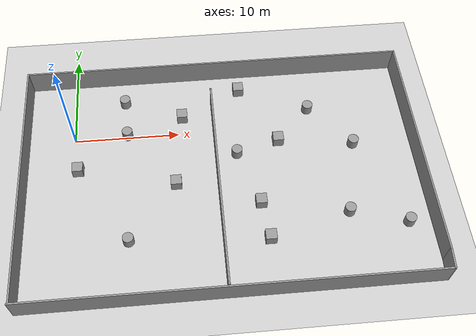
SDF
<sdf version="1.7">
 <world name="default">
  <light name="sun" type="directional">
   <pose>0 0 10 0 -0 0</pose>
   <diffuse>0.8 0.8 0.8 1</diffuse>
   <specular>0.2 0.2 0.2 1</specular>
   <attenuation>
    <range>1000</range>
    <constant>0.9</constant>
    <linear>0.01</linear>
    <quadratic>0.001</quadratic>
   </attenuation>
   <direction>-0.5 0.1 -0.9</direction>
   <spot><inner_angle>0</inner_angle><outer_angle>0</outer_angle><falloff>0</falloff></spot>
  </light>
  <model name="ground_plane">
   <static>1</static>
   <link name="link">
    <collision name="collision">
     <geometry><plane><normal>0 0 1</normal><size>100 100</size></plane></geometry>
     <surface><friction><ode><mu>100</mu><mu2>50</mu2></ode></friction></surface>
    </collision>
    <visual name="visual">
     <cast_shadows>0</cast_shadows>
     <geometry><plane><normal>0 0 1</normal><size>100 100</size></plane></geometry>
     <material>
      <script><uri>file://media/materials/scripts/gazebo.material</uri><name>Gazebo/Grey</name></script>
     </material>
    </visual>
   </link>
  </model>
  <gravity>0 0 -9.8</gravity>
  <magnetic_field>6e-06 2.3e-05 -4.2e-05</magnetic_field>
  <atmosphere type="adiabatic"/>
  <physics type="ode">
   <max_step_size>0.001</max_step_size>
   <real_time_factor>1</real_time_factor>
   <real_time_update_rate>1000</real_time_update_rate>
  </physics>
  <scene><ambient>0.4 0.4 0.4 1</ambient><background>0.7 0.7 0.7 1</background><shadows>1</shadows></scene>
  <audio><device>default</device></audio>
  <spherical_coordinates>
   <surface_model>EARTH_WGS84</surface_model>
   <latitude_deg>0</latitude_deg>
   <longitude_deg>0</longitude_deg>
   <elevation>0</elevation>
   <heading_deg>0</heading_deg>
  </spherical_coordinates>
  <model name="room">
   <pose>13.8972 -5.17235 0 0 -0 0</pose>
   <link name="Wall_13">
    <collision name="Wall_13_Collision">
     <geometry><box><size>24 0.15 2.5</size></box></geometry>
     <pose>0 0 1.25 0 -0 0</pose>
    </collision>
    <visual name="Wall_13_Visual">
     <pose>0 0 1.25 0 -0 0</pose>
     <geometry><box><size>24 0.15 2.5</size></box></geometry>
     <material>
      <script><uri>file://media/materials/scripts/gazebo.material</uri><name>Gazebo/Grey</name></script>
      <ambient>1 1 1 1</ambient>
     </material>
     <meta><layer>0</layer></meta>
    </visual>
    <pose>-18.383 0.040041 0 0 -0 -1.5708</pose>
   </link>
   <link name="Wall_15">
    <collision name="Wall_15_Collision">
     <geometry><box><size>37 0.15 2.5</size></box></geometry>
     <pose>0 0 1.25 0 -0 0</pose>
    </collision>
    <visual name="Wall_15_Visual">
     <pose>0 0 1.25 0 -0 0</pose>
     <geometry><box><size>37 0.15 2.5</size></box></geometry>
     <material>
      <script><uri>file://media/materials/scripts/gazebo.material</uri><name>Gazebo/Grey</name></script>
      <ambient>1 1 1 1</ambient>
     </material>
     <meta><layer>0</layer></meta>
    </visual>
    <pose>0.041985 11.965 0 0 -0 0</pose>
   </link>
   <link name="Wall_16">
    <collision name="Wall_16_Collision">
     <geometry><box><size>22.25 0.15 2.5</size></box></geometry>
     <pose>0 0 1.25 0 -0 0</pose>
    </collision>
    <visual name="Wall_16_Visual">
     <pose>0 0 1.25 0 -0 0</pose>
     <geometry><box><size>22.25 0.15 2.5</size></box></geometry>
     <material>
      <script><uri>file://media/materials/scripts/gazebo.material</uri><name>Gazebo/Grey</name></script>
      <ambient>1 1 1 1</ambient>
     </material>
     <meta><layer>0</layer></meta>
    </visual>
    <pose>18.467 0.915041 0 0 -0 -1.5708</pose>
   </link>
   <link name="Wall_19">
    <collision name="Wall_19_Collision">
     <geometry><box><size>36.9623 0.15 2.5</size></box></geometry>
     <pose>0 0 1.25 0 -0 0</pose>
    </collision>
    <visual name="Wall_19_Visual">
     <pose>0 0 1.25 0 -0 0</pose>
     <geometry><box><size>36.9623 0.15 2.5</size></box></geometry>
     <material>
      <script><uri>file://media/materials/scripts/gazebo.material</uri><name>Gazebo/Grey</name></script>
      <ambient>1 1 1 1</ambient>
     </material>
     <meta><layer>0</layer></meta>
    </visual>
    <pose>-0.06586 -11.96 0 0 -0 0</pose>
   </link>
   <link name="Wall_23">
    <collision name="Wall_23_Collision">
     <geometry><box><size>20.5 0.15 2.5</size></box></geometry>
     <pose>0 0 1.25 0 -0 0</pose>
    </collision>
    <visual name="Wall_23_Visual">
     <pose>0 0 1.25 0 -0 0</pose>
     <geometry><box><size>20.5 0.15 2.5</size></box></geometry>
     <material>
      <script><uri>file://media/materials/scripts/gazebo.material</uri><name>Gazebo/Grey</name></script>
      <ambient>1 1 1 1</ambient>
     </material>
     <meta><layer>0</layer></meta>
    </visual>
    <pose>-0.452882 -1.55084 0 0 -0 -1.5708</pose>
   </link>
   <link name="Wall_24">
    <collision name="Wall_24_Collision">
     <geometry><box><size>0.25 0.15 2.5</size></box></geometry>
     <pose>0 0 1.25 0 -0 0</pose>
    </collision>
    <visual name="Wall_24_Visual">
     <pose>0 0 1.25 0 -0 0</pose>
     <geometry><box><size>0.25 0.15 2.5</size></box></geometry>
     <material>
      <script><uri>file://media/materials/scripts/gazebo.material</uri><name>Gazebo/Grey</name></script>
      <ambient>1 1 1 1</ambient>
     </material>
     <meta><layer>0</layer></meta>
    </visual>
    <pose>-0.477881 -11.7691 0 0 -0 -2.0944</pose>
   </link>
   <link name="Wall_26">
    <collision name="Wall_26_Collision">
     <geometry><box><size>1.97946 0.15 2.5</size></box></geometry>
     <pose>0 0 1.25 0 -0 0</pose>
    </collision>
    <visual name="Wall_26_Visual">
     <pose>0 0 1.25 0 -0 0</pose>
     <geometry><box><size>1.97946 0.15 2.5</size></box></geometry>
     <material>
      <script><uri>file://media/materials/scripts/gazebo.material</uri><name>Gazebo/Grey</name></script>
      <ambient>1 1 1 1</ambient>
     </material>
     <meta><layer>0</layer></meta>
    </visual>
    <pose>18.4036 -11.0475 0 0 -0 1.50148</pose>
   </link>
   <static>1</static>
  </model>
  <model name="unit_cylinder">
   <pose>5.02485 -11.2674 0.499998 3e-06 -3e-06 0</pose>
   <link name="link">
    <inertial>
     <mass>1</mass>
     <inertia><ixx>0.145833</ixx><ixy>0</ixy><ixz>0</ixz><iyy>0.145833</iyy><iyz>0</iyz><izz>0.125</izz></inertia>
    </inertial>
    <collision name="collision">
     <geometry><cylinder><radius>0.5</radius><length>1</length></cylinder></geometry>
    </collision>
    <visual name="visual">
     <geometry><cylinder><radius>0.5</radius><length>1</length></cylinder></geometry>
     <material>
      <script><name>Gazebo/Grey</name><uri>file://media/materials/scripts/gazebo.material</uri></script>
     </material>
    </visual>
   </link>
  </model>
  <model name="unit_box">
   <pose>9.51903 -5.69304 0.499995 -1e-05 -0 -0</pose>
   <link name="link">
    <inertial>
     <mass>1</mass>
     <inertia>
      <ixx>0.166667</ixx>
      <ixy>0</ixy>
      <ixz>0</ixz>
      <iyy>0.166667</iyy>
      <iyz>0</iyz>
      <izz>0.166667</izz>
     </inertia>
    </inertial>
    <collision name="collision"><geometry><box><size>1 1 1</size></box></geometry></collision>
    <visual name="visual">
     <geometry><box><size>1 1 1</size></box></geometry>
     <material>
      <script><name>Gazebo/Grey</name><uri>file://media/materials/scripts/gazebo.material</uri></script>
     </material>
    </visual>
   </link>
  </model>
  <model name="unit_cylinder_0">
   <pose>5.0561 0.185693 0.499998 3e-06 -3e-06 0</pose>
   <link name="link">
    <inertial>
     <mass>1</mass>
     <inertia><ixx>0.145833</ixx><ixy>0</ixy><ixz>0</ixz><iyy>0.145833</iyy><iyz>0</iyz><izz>0.125</izz></inertia>
    </inertial>
    <collision name="collision">
     <geometry><cylinder><radius>0.5</radius><length>1</length></cylinder></geometry>
    </collision>
    <visual name="visual">
     <geometry><cylinder><radius>0.5</radius><length>1</length></cylinder></geometry>
     <material>
      <script><name>Gazebo/Grey</name><uri>file://media/materials/scripts/gazebo.material</uri></script>
     </material>
    </visual>
   </link>
  </model>
  <model name="unit_box_0">
   <pose>10.4559 1.87845 0.499995 -1e-05 -0 -0</pose>
   <link name="link">
    <inertial>
     <mass>1</mass>
     <inertia>
      <ixx>0.166667</ixx>
      <ixy>0</ixy>
      <ixz>0</ixz>
      <iyy>0.166667</iyy>
      <iyz>0</iyz>
      <izz>0.166667</izz>
     </inertia>
    </inertial>
    <collision name="collision"><geometry><box><size>1 1 1</size></box></geometry></collision>
    <visual name="visual">
     <geometry><box><size>1 1 1</size></box></geometry>
     <material>
      <script><name>Gazebo/Grey</name><uri>file://media/materials/scripts/gazebo.material</uri></script>
     </material>
    </visual>
   </link>
  </model>
  <model name="unit_cylinder_1">
   <pose>4.89968 4.08899 0.499992 -3e-06 3e-06 0</pose>
   <link name="link">
    <inertial>
     <mass>1</mass>
     <inertia><ixx>0.145833</ixx><ixy>0</ixy><ixz>0</ixz><iyy>0.145833</iyy><iyz>0</iyz><izz>0.125</izz></inertia>
    </inertial>
    <collision name="collision">
     <geometry><cylinder><radius>0.5</radius><length>1</length></cylinder></geometry>
    </collision>
    <visual name="visual">
     <geometry><cylinder><radius>0.5</radius><length>1</length></cylinder></geometry>
     <material>
      <script><name>Gazebo/Grey</name><uri>file://media/materials/scripts/gazebo.material</uri></script>
     </material>
    </visual>
   </link>
  </model>
  <model name="unit_box_1">
   <pose>0.37915 -3.5185 0.499995 -1e-05 -0 -0</pose>
   <link name="link">
    <inertial>
     <mass>1</mass>
     <inertia>
      <ixx>0.166667</ixx>
      <ixy>0</ixy>
      <ixz>0</ixz>
      <iyy>0.166667</iyy>
      <iyz>0</iyz>
      <izz>0.166667</izz>
     </inertia>
    </inertial>
    <collision name="collision"><geometry><box><size>1 1 1</size></box></geometry></collision>
    <visual name="visual">
     <geometry><box><size>1 1 1</size></box></geometry>
     <material>
      <script><name>Gazebo/Grey</name><uri>file://media/materials/scripts/gazebo.material</uri></script>
     </material>
    </visual>
   </link>
  </model>
  <model name="unit_box_2">
   <pose>16.259 4.76401 0.499995 0 1e-05 0</pose>
   <link name="link">
    <inertial>
     <mass>1</mass>
     <inertia>
      <ixx>0.166667</ixx>
      <ixy>0</ixy>
      <ixz>0</ixz>
      <iyy>0.166667</iyy>
      <iyz>0</iyz>
      <izz>0.166667</izz>
     </inertia>
    </inertial>
    <collision name="collision"><geometry><box><size>1 1 1</size></box></geometry></collision>
    <visual name="visual">
     <geometry><box><size>1 1 1</size></box></geometry>
     <material>
      <script><name>Gazebo/Grey</name><uri>file://media/materials/scripts/gazebo.material</uri></script>
     </material>
    </visual>
   </link>
  </model>
  <model name="unit_cylinder_2">
   <pose>15.4603 -2.79372 0.499992 -3e-06 4e-06 0</pose>
   <link name="link">
    <inertial>
     <mass>1</mass>
     <inertia><ixx>0.145833</ixx><ixy>0</ixy><ixz>0</ixz><iyy>0.145833</iyy><iyz>0</iyz><izz>0.125</izz></inertia>
    </inertial>
    <collision name="collision">
     <geometry><cylinder><radius>0.5</radius><length>1</length></cylinder></geometry>
    </collision>
    <visual name="visual">
     <geometry><cylinder><radius>0.5</radius><length>1</length></cylinder></geometry>
     <material>
      <script><name>Gazebo/Grey</name><uri>file://media/materials/scripts/gazebo.material</uri></script>
     </material>
    </visual>
   </link>
  </model>
  <model name="unit_cylinder_3">
   <pose>22.9117 1.89532 0.499998 3e-06 -4e-06 0</pose>
   <link name="link">
    <inertial>
     <mass>1</mass>
     <inertia><ixx>0.145833</ixx><ixy>0</ixy><ixz>0</ixz><iyy>0.145833</iyy><iyz>0</iyz><izz>0.125</izz></inertia>
    </inertial>
    <collision name="collision">
     <geometry><cylinder><radius>0.5</radius><length>1</length></cylinder></geometry>
    </collision>
    <visual name="visual">
     <geometry><cylinder><radius>0.5</radius><length>1</length></cylinder></geometry>
     <material>
      <script><name>Gazebo/Grey</name><uri>file://media/materials/scripts/gazebo.material</uri></script>
     </material>
    </visual>
   </link>
  </model>
  <model name="unit_box_3">
   <pose>19.5465 -1.61933 0.499995 -1e-05 -0 -0</pose>
   <link name="link">
    <inertial>
     <mass>1</mass>
     <inertia>
      <ixx>0.166667</ixx>
      <ixy>0</ixy>
      <ixz>0</ixz>
      <iyy>0.166667</iyy>
      <iyz>0</iyz>
      <izz>0.166667</izz>
     </inertia>
    </inertial>
    <collision name="collision"><geometry><box><size>1 1 1</size></box></geometry></collision>
    <visual name="visual">
     <geometry><box><size>1 1 1</size></box></geometry>
     <material>
      <script><name>Gazebo/Grey</name><uri>file://media/materials/scripts/gazebo.material</uri></script>
     </material>
    </visual>
   </link>
  </model>
  <model name="unit_cylinder_4">
   <pose>26.6996 -2.56396 0.499998 3e-06 4e-06 -0</pose>
   <link name="link">
    <inertial>
     <mass>1</mass>
     <inertia><ixx>0.145833</ixx><ixy>0</ixy><ixz>0</ixz><iyy>0.145833</iyy><iyz>0</iyz><izz>0.125</izz></inertia>
    </inertial>
    <collision name="collision">
     <geometry><cylinder><radius>0.5</radius><length>1</length></cylinder></geometry>
    </collision>
    <visual name="visual">
     <geometry><cylinder><radius>0.5</radius><length>1</length></cylinder></geometry>
     <material>
      <script><name>Gazebo/Grey</name><uri>file://media/materials/scripts/gazebo.material</uri></script>
     </material>
    </visual>
   </link>
  </model>
  <model name="unit_box_4">
   <pose>17.1543 -8.32719 0.499995 -1e-05 -0 -0</pose>
   <link name="link">
    <inertial>
     <mass>1</mass>
     <inertia>
      <ixx>0.166667</ixx>
      <ixy>0</ixy>
      <ixz>0</ixz>
      <iyy>0.166667</iyy>
      <iyz>0</iyz>
      <izz>0.166667</izz>
     </inertia>
    </inertial>
    <collision name="collision"><geometry><box><size>1 1 1</size></box></geometry></collision>
    <visual name="visual">
     <geometry><box><size>1 1 1</size></box></geometry>
     <material>
      <script><name>Gazebo/Grey</name><uri>file://media/materials/scripts/gazebo.material</uri></script>
     </material>
    </visual>
   </link>
  </model>
  <model name="unit_cylinder_5">
   <pose>25.0666 -9.91261 0.499997 3e-06 4e-06 -0</pose>
   <link name="link">
    <inertial>
     <mass>1</mass>
     <inertia><ixx>0.145833</ixx><ixy>0</ixy><ixz>0</ixz><iyy>0.145833</iyy><iyz>0</iyz><izz>0.125</izz></inertia>
    </inertial>
    <collision name="collision">
     <geometry><cylinder><radius>0.5</radius><length>1</length></cylinder></geometry>
    </collision>
    <visual name="visual">
     <geometry><cylinder><radius>0.5</radius><length>1</length></cylinder></geometry>
     <material>
      <script><name>Gazebo/Grey</name><uri>file://media/materials/scripts/gazebo.material</uri></script>
     </material>
    </visual>
   </link>
  </model>
  <model name="unit_box_5">
   <pose>17.5946 -11.9868 0.499995 -1e-05 -0 0</pose>
   <link name="link">
    <inertial>
     <mass>1</mass>
     <inertia>
      <ixx>0.166667</ixx>
      <ixy>0</ixy>
      <ixz>0</ixz>
      <iyy>0.166667</iyy>
      <iyz>0</iyz>
      <izz>0.166667</izz>
     </inertia>
    </inertial>
    <collision name="collision"><geometry><box><size>1 1 1</size></box></geometry></collision>
    <visual name="visual">
     <geometry><box><size>1 1 1</size></box></geometry>
     <material>
      <script><name>Gazebo/Grey</name><uri>file://media/materials/scripts/gazebo.material</uri></script>
     </material>
    </visual>
   </link>
  </model>
  <model name="unit_cylinder_6">
   <pose>30.2338 -11.3985 0.499997 3e-06 4e-06 -0</pose>
   <link name="link">
    <inertial>
     <mass>1</mass>
     <inertia><ixx>0.145833</ixx><ixy>0</ixy><ixz>0</ixz><iyy>0.145833</iyy><iyz>0</iyz><izz>0.125</izz></inertia>
    </inertial>
    <collision name="collision">
     <geometry><cylinder><radius>0.5</radius><length>1</length></cylinder></geometry>
    </collision>
    <visual name="visual">
     <geometry><cylinder><radius>0.5</radius><length>1</length></cylinder></geometry>
     <material>
      <script><name>Gazebo/Grey</name><uri>file://media/materials/scripts/gazebo.material</uri></script>
     </material>
    </visual>
   </link>
  </model>
 </world>
</sdf>
